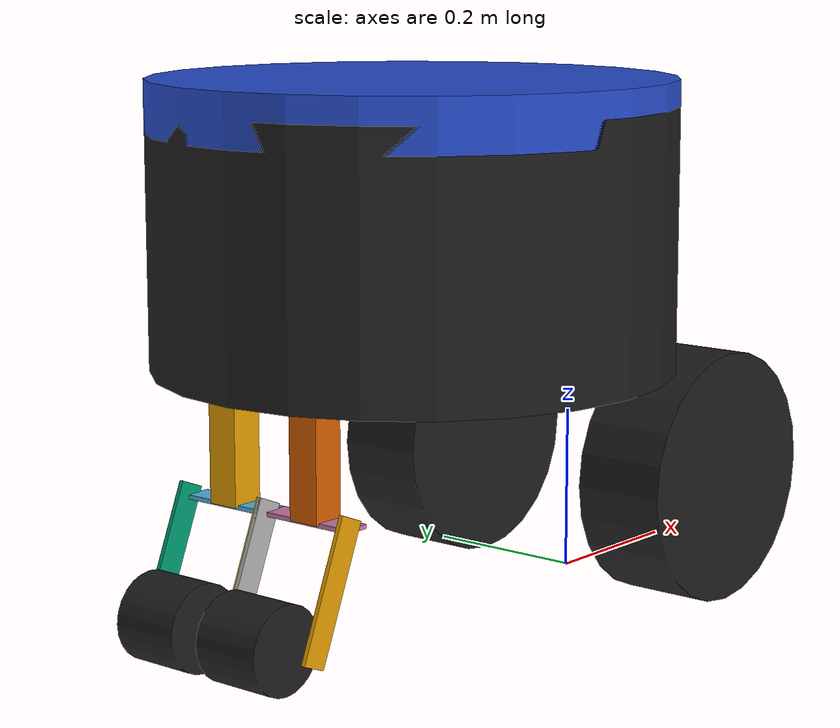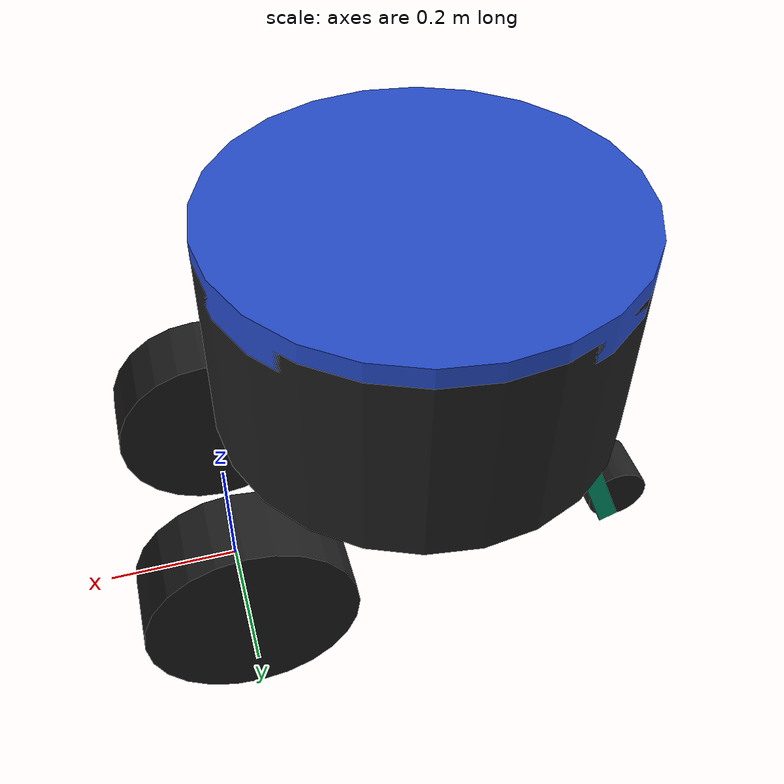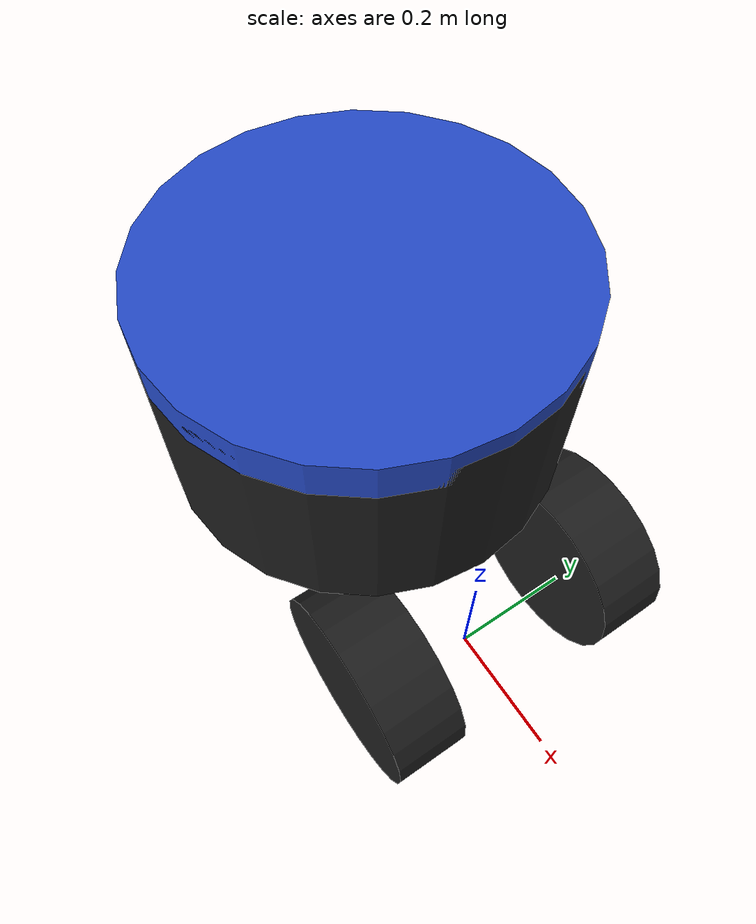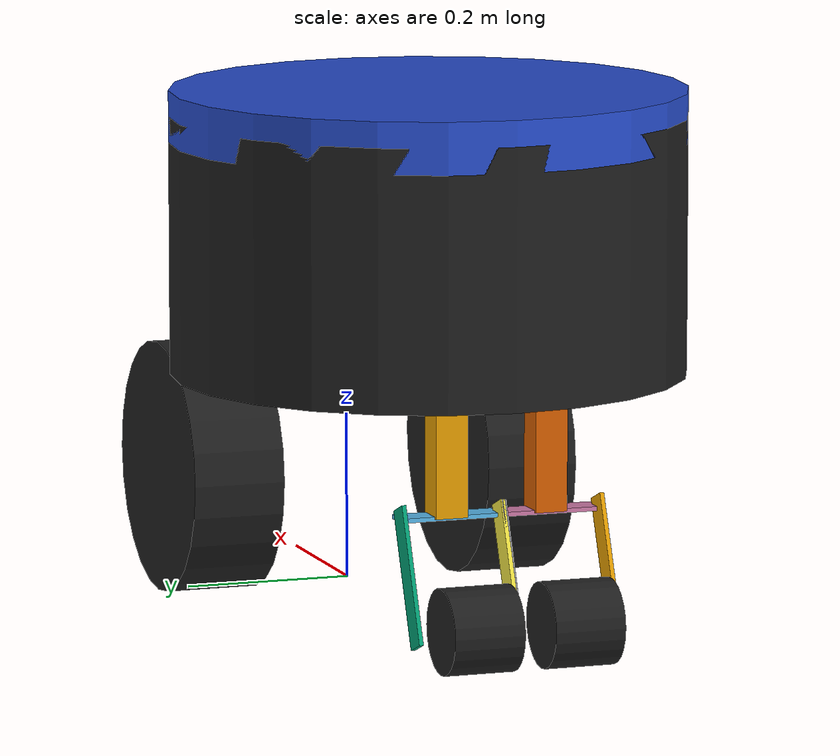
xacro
<?xml version="1.0"?>
<robot
     xmlns:xacro="http://www.ros.org/wiki/xacro" name="swarm_6">
     <!-- define the base-link origin to lie at floor level, between the drive wheels-->
     <!--main body is a simple box; origin is a center of box-->
    <xacro:property name="bodylen" value="0.5" />
    <xacro:property name="bodywidth" value="0.1572" />
    <xacro:property name="bodyheight" value="0.3" />
    <xacro:property name="bodyclearance" value="0.4" />  <!--clearance from bottom of box to ground-->
    <xacro:property name="bodyradius" value="0.3" />
    <!-- derived values-->
    <xacro:property name="half_bodylen" value="${bodylen/2.0}" />
    <xacro:property name="half_bodyheight" value="${bodyheight/2.0}" />
    <!-- placement of main body relative to base link frame -->
    <xacro:property name="bodyOX" value="${-bodyradius}" />
    <xacro:property name="bodyOY" value="0" />
    <xacro:property name="bodyOZ" value="0.45" />

    <!-- define the drive-wheel dimensions-->
    <xacro:property name="tirediam" value="0.3" />
    <xacro:property name="tirerad" value="${tirediam/2.0}" />
    <xacro:property name="tirewidth" value="0.10985" />
    <!-- "track" is the distance between the drive wheels -->
    <xacro:property name="track" value=".36515" />

    <xacro:property name="M_PI" value="3.1415926535897931" />
    <xacro:property name="boschwidth" value="0.0381" />
    <xacro:property name="casterdrop" value="0.125" />
    <xacro:property name="bracketwidth" value="0.1175" />
    <xacro:property name="bracketheight" value="0.16" />
    <xacro:property name="bracketthick" value="0.0308" />
    <xacro:property name="bracketangle" value="0.3854" />
    <xacro:property name="casterwidth" value="0.0826" />
    <xacro:property name="casterdiam" value="0.0986" />

    <!--here is a default inertia matrix with small, but legal values; use this when don't need accuracy for I -->
    <!--model will assign inertia matrix dominated by main body box -->
    <xacro:macro name="default_inertial" params="mass">
        <inertial>
            <mass value="${mass}" />
            <inertia ixx="0.01" ixy="0.0" ixz="0.0"
         iyy="0.01" iyz="0.0"
         izz="0.01" />
        </inertial>
    </xacro:macro>
    <xacro:macro name="wheel" params="prefix reflect">
        <link name="${prefix}_wheel">
            <visual>
                <geometry>
                    <cylinder radius="${tirerad}" length="${tirewidth}"/>
                </geometry>
            </visual>
            <collision>
                <geometry>
                    <cylinder radius="${tirerad}" length="${tirewidth}"/>
                </geometry>
            </collision>
            <inertial>
            <!--assign inertial properties to drive wheels -->
            <mass value="1" />
            <inertia ixx="0.1" ixy="0" ixz="0"
              iyy="0.1" iyz="0"
              izz="0.1" />
        </inertial>
        </link>
        <joint name="${prefix}_wheel_joint" type="continuous">
            <axis xyz="0 0 1"/>
            <parent link="base_link"/>
            <child link="${prefix}_wheel"/>
            <origin xyz="0 ${reflect*track/2} ${tirerad}" rpy="0 ${M_PI/2} ${M_PI/2}"/>
            <limit effort="100" velocity="15" />
            <joint_properties damping="0.0" friction="0.0" />
        </joint>
    </xacro:macro>
    <xacro:macro name="caster" params="prefix reflect">
        <link name="castdrop_${prefix}">
            <visual>
                <geometry>
                    <box size="${boschwidth} ${boschwidth} ${casterdrop}"/>
                </geometry>
                <origin xyz="0 0 0" rpy="0 0 0"/>
            </visual>
            <collision>
                <geometry>
                    <box size="${boschwidth} ${boschwidth} ${casterdrop}"/>
                </geometry>
                <origin xyz="0 0 0" rpy="0 0 0"/>
            </collision>
            <xacro:default_inertial mass="0.2"/>
        </link>
        <joint name="cast2base_${prefix}" type="fixed">
            <parent link="base_link"/>
            <child link="castdrop_${prefix}"/>
            <origin xyz="${-bodylen/2+bodyOX+boschwidth/2} ${reflect*bodywidth/2-reflect*boschwidth/2} ${-casterdrop/2-bodyheight/2+bodyOZ}" />
        </joint>
        <link name="brackettop_${prefix}">
            <visual>
                <geometry>
                    <box size="${bracketwidth} ${bracketthick} .005"/>
                </geometry>
                <origin xyz="0 0 0" rpy="0 0 0"/>
            </visual>
            <collision>
                <geometry>
                    <box size="${bracketwidth} ${bracketthick} .005"/>
                </geometry>
                <origin xyz="0 0 0" rpy="0 0 0"/>
            </collision>
            <xacro:default_inertial mass="0.2"/>
        </link>
        <joint name="cast2bracket_${prefix}" type="continuous">
            <axis xyz="0 0 1"/>
            <parent link="castdrop_${prefix}"/>
            <child link="brackettop_${prefix}"/>
            <origin xyz="0 0 ${-casterdrop/2}" rpy="0 0 ${M_PI/2}"/>
            <joint_properties damping="0.0" friction="0.0" />
        </joint>
        <link name="bracketside1_${prefix}">
            <visual>
                <geometry>
                    <box size="${bracketthick} ${bracketheight} .005"/>
                </geometry>
                <origin xyz="0 0 0" rpy="${M_PI/2} ${-bracketangle} ${M_PI/2}"/>
            </visual>
            <collision>
                <geometry>
                    <box size="${bracketthick} ${bracketheight} .005"/>
                </geometry>
                <origin xyz="0 0 0" rpy="${M_PI/2} ${-bracketangle} ${M_PI/2}"/>
            </collision>
            <xacro:default_inertial mass="0.2"/>
        </link>
        <joint name="brack2top1_${prefix}" type="fixed">
            <parent link="brackettop_${prefix}"/>
            <child link="bracketside1_${prefix}"/>
            <origin xyz="${bracketwidth/2} .04 -${bracketheight/2-.02}" rpy="0 0 0" />
        </joint>
        <link name="bracketside2_${prefix}">
            <visual>
                <geometry>
                    <box size="${bracketthick} ${bracketheight} .005"/>
                </geometry>
                <origin xyz="0 0 0" rpy="${M_PI/2} ${-bracketangle} ${M_PI/2}"/>
            </visual>
            <collision>
                <geometry>
                    <box size="${bracketthick} ${bracketheight} .005"/>
                </geometry>
                <origin xyz="0 0 0" rpy="${M_PI/2} ${-bracketangle} ${M_PI/2}"/>
            </collision>
            <xacro:default_inertial mass="0.2"/>
        </link>
        <joint name="brack2top2_${prefix}" type="fixed">
            <parent link="brackettop_${prefix}"/>
            <child link="bracketside2_${prefix}"/>
            <origin xyz="${-bracketwidth/2} .04 -${bracketheight/2-.02}" rpy="0 0 0" />
        </joint>
        <link name="${prefix}_casterwheel">
            <visual>
                <geometry>
                    <cylinder radius="${casterdiam/2}" length="${casterwidth}"/>
                </geometry>
            </visual>
            <collision>
                <geometry>
                    <cylinder radius="${casterdiam/2}" length="${casterwidth}"/>
                </geometry>
            </collision>
            <!-- accept default inertial properties for caster wheels-->
            <xacro:default_inertial mass="0.5"/>
        </link>
        <joint name="${prefix}_caster_joint" type="continuous">
            <axis xyz="0 0 1"/>
            <parent link="bracketside1_${prefix}"/>
            <child link="${prefix}_casterwheel"/>
            <origin xyz="${-casterwidth/2-.02} .053 -.053" rpy="0 ${M_PI/2} 0"/>
            <limit effort="100" velocity="15" />
            <joint_properties damping="0.0" friction="0.0" />
        </joint>
    </xacro:macro>

    <xacro:caster prefix="left" reflect="1"/>
    <xacro:caster prefix="right" reflect="-1"/>

    <link name="base_link">
        <visual>
            <geometry>
                <cylinder length="${bodyheight}" radius="${bodyradius}"/>
            </geometry>
            <origin xyz="${bodyOX} ${bodyOY} ${bodyOZ}" rpy="0 0 0"/>
        </visual>
        <collision>
            <geometry>
                <cylinder length="${bodyheight}" radius="${bodyradius}"/>
            </geometry>
            <origin xyz="${bodyOX} ${bodyOY} ${bodyOZ}" rpy="0 0 0"/>
        </collision>
        <inertial>
            <!--assign almost all the mass to the main body box; set m= 100kg; treat I as approx m*r^2 -->
            <mass value="40" />
            <inertia ixx="1" ixy="0" ixz="0"
              iyy="1" iyz="0"
              izz="1" />
        </inertial>
    </link>

    <xacro:wheel prefix="left" reflect="1"/>
    <xacro:wheel prefix="right" reflect="-1"/>

 <gazebo>
  <plugin name="differential_drive_controller" filename="libgazebo_ros_diff_drive.so">
    <alwaysOn>true</alwaysOn>
    <updateRate>100</updateRate>
    <leftJoint>right_wheel_joint</leftJoint>
    <rightJoint>left_wheel_joint</rightJoint>
    <wheelSeparation>${track}</wheelSeparation>
    <wheelDiameter>${tirediam}</wheelDiameter>
    <torque>200</torque>
    <commandTopic>cmd_vel</commandTopic>
    <odometryTopic>odom</odometryTopic>
    <odometryFrame>odom</odometryFrame>
    <robotBaseFrame>base_link</robotBaseFrame>
    <publishWheelTF>true</publishWheelTF>
    <publishWheelJointState>true</publishWheelJointState>
  </plugin>
 </gazebo>

  <gazebo reference="right_wheel">
    <mu1>100000.0</mu1>
    <mu2>100000.0</mu2>
    <material>Gazebo/Black</material>
  </gazebo>
  <gazebo reference="left_wheel">
    <mu1>100000.0</mu1>
    <mu2>100000.0</mu2>
    <material>Gazebo/Black</material>
  </gazebo>

  <gazebo reference="right_casterwheel">
    <mu1>100000.0</mu1>
    <mu2>100000.0</mu2>
    <material>Gazebo/Black</material>
  </gazebo>

  <gazebo reference="left_casterwheel">
    <mu1>100000.0</mu1>
    <mu2>100000.0</mu2>
    <material>Gazebo/Black</material>
  </gazebo>

  <gazebo reference="base_link">
    <mu1>100000.0</mu1>
    <mu2>100000.0</mu2>
    <material>Gazebo/Black</material>
  </gazebo>

  <gazebo>
     <plugin name="joint_state_publisher" filename="libgazebo_ros_joint_state_publisher.so">
       <jointName>cast2bracket_right, cast2bracket_left, right_caster_joint, left_caster_joint </jointName>
     </plugin>
  </gazebo>

  <!-- add a simulated lidar, including visual, collision and inertial properties, and physics simulation-->
  <link name="lidar_link">
      <collision>
          <origin xyz="0 0 0" rpy="0 0 0"/>
          <geometry>
              <!-- coarse LIDAR model; a simple box -->
              <cylinder length="0.06" radius="${bodyradius}"/>
          </geometry>
      </collision>

      <visual>
          <origin xyz="0 0 0" rpy="0 0 0" />
          <geometry>
              <cylinder length="0.06" radius="${bodyradius}"/>
          </geometry>
      </visual>

      <inertial>
          <mass value="2.0" />
          <origin xyz="0 0 0" rpy="0 0 0"/>
          <inertia ixx="0.01" ixy="0" ixz="0" iyy="0.01" iyz="0" izz="0.01" />
      </inertial>
  </link>
  <!--the above displays a box meant to imply Lidar-->

  <joint name="lidar_joint" type="fixed">
      <axis xyz="0 1 0" />
      <origin xyz="${bodyOX} ${bodyOY} 0.6" rpy="0 0 0"/>
      <parent link="base_link"/>
      <child link="lidar_link"/>
  </joint>
    <!-- here is the gazebo plug-in to simulate a lidar sensor -->
  <gazebo reference="lidar_link">
    <mu1>100000.0</mu1>
    <mu2>100000.0</mu2>
    <material>Gazebo/Blue</material>

    <sensor type="gpu_ray" name="sick_lidar_sensor">
      <pose>0 0 0 0 0 0</pose>
      <visualize>true</visualize>
      <update_rate>40</update_rate>
      <ray>
        <scan>
          <horizontal>
            <samples>181</samples>
            <resolution>1</resolution>
            <min_angle>-3.140796</min_angle>
            <max_angle>3.140796</max_angle>
          </horizontal>
        </scan>
        <range>
          <min>0.10</min>
          <max>40.0</max>
          <resolution>0.01</resolution>
        </range>
        <noise>
          <type>gaussian</type>
          <mean>0.0</mean>
          <stddev>0.01</stddev>
        </noise>
      </ray>
      <plugin name="gazebo_ros_lidar_controller" filename="libgazebo_ros_gpu_laser.so">
        <topicName>/scan6</topicName>
        <frameName>lidar_link</frameName>
      </plugin>
    </sensor>
  </gazebo>
</robot>
